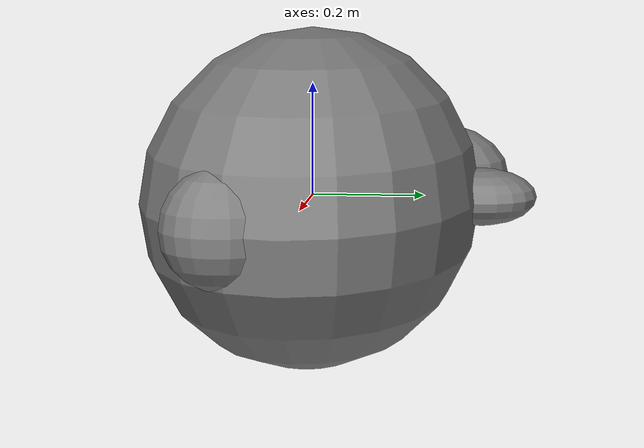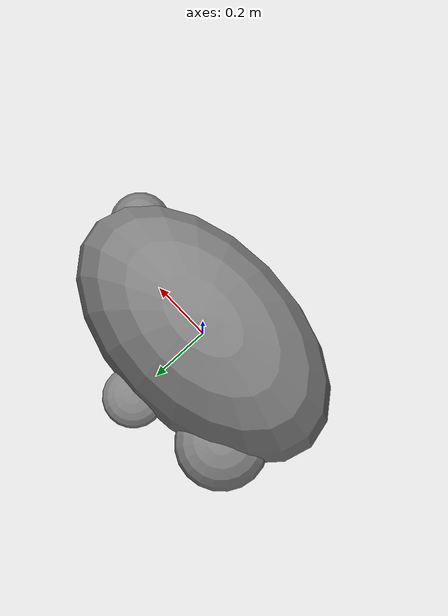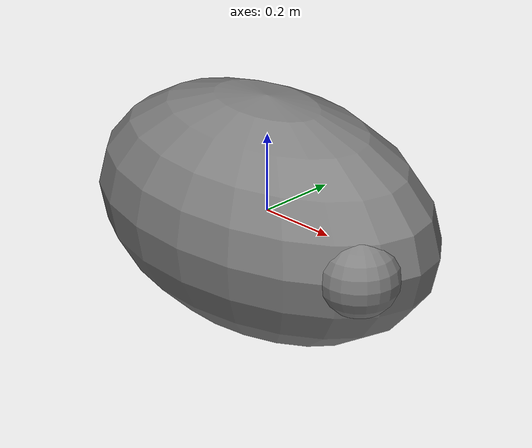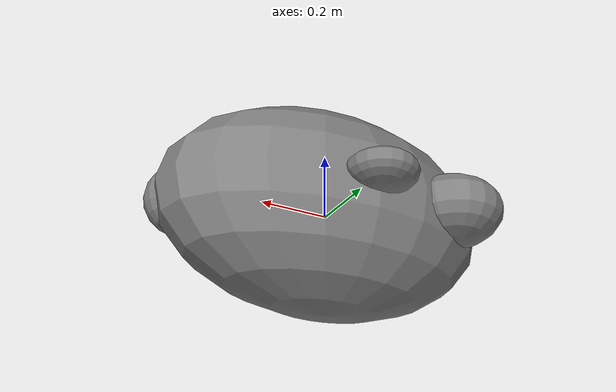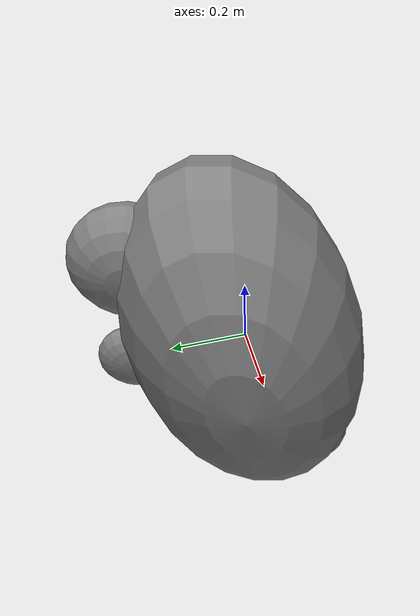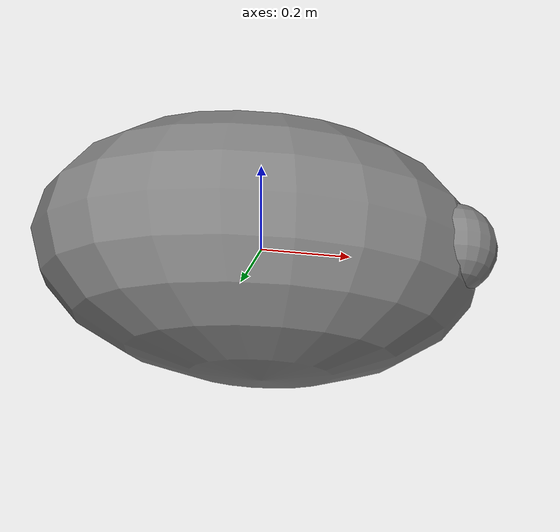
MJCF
<mujoco model="stone">
    <worldbody>
        <body name="stone" pos="0 0 0">
            <!-- Main body of the stone -->
            <geom name="main_stone" type="ellipsoid" size="0.5 0.3 0.3" rgba="0.5 0.5 0.5 1"/>
            <!-- Additional features to give the stone more natural irregularities -->
            <geom name="stone_bump1" type="ellipsoid" size="0.1 0.1 0.1" pos="0.4 -0.1 0" rgba="0.5 0.5 0.5 1"/>
            <geom name="stone_bump2" type="ellipsoid" size="0.15 0.15 0.1" pos="-0.3 0.2 0" rgba="0.5 0.5 0.5 1"/>
            <geom name="stone_bump3" type="ellipsoid" size="0.1 0.1 0.05" pos="0 0.3 0" rgba="0.5 0.5 0.5 1"/>
        </body>
    </worldbody>
</mujoco>
